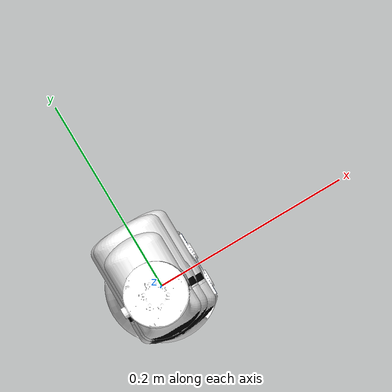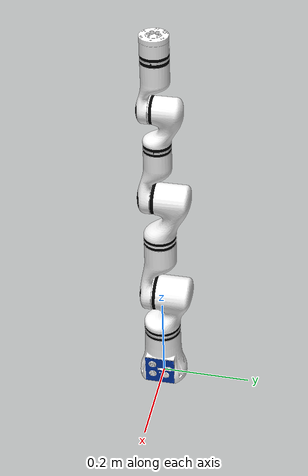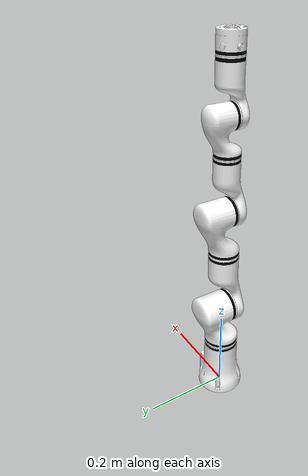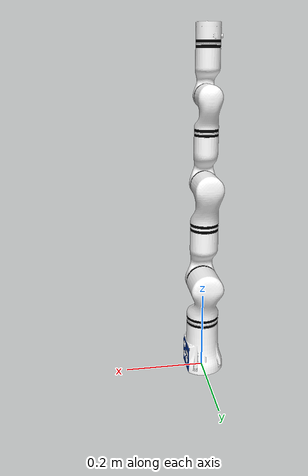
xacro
<?xml version='1.0' encoding='utf-8'?>
<robot name="rm_65_description">
  <link name="base_link">
    <inertial>
      <origin rpy="0 0 0" xyz="-0.00049987 -5.2709E-05 0.060019" />
      <mass value="1.862" />
      <inertia ixx="0.0017232" ixy="-3.1058E-06" ixz="3.7924E-05" iyy="0.0017051" iyz="-1.3691E-06" izz="0.00090158" />
    </inertial>
    <collision>
      <origin rpy="0 0 0" xyz="0 0 0" />
      <geometry>
        <mesh filename="package://rm_description/meshes/rm_65_arm/base_link.STL" />
      </geometry>
    </collision>
    <visual>
      <origin xyz="0 0 0" rpy="0 0 0" />
      <geometry>
        <mesh filename="package://rm_description/meshes/dae/base/base_v1.0.dae" />
      </geometry>
    </visual>
  </link>
  <link name="Link1">
    <inertial>
      <origin rpy="0 0 0" xyz="0.000941 0.007803 -0.10744" />
      <mass value="1.51" />
      <inertia ixx="0.002662223" ixy="-0.000026849" ixz="-0.000013775" iyy="0.002331685" iyz="-0.000078667" izz="0.001663712" />
    </inertial>
    <collision>
      <origin rpy="0 0 0" xyz="0 0 0" />
      <geometry>
        <mesh filename="package://rm_description/meshes/rm_65_arm/link1.STL" />
      </geometry>
    </collision>
    <visual>
      <origin xyz="0 0 0" rpy="0 0 0" />
      <geometry>
        <mesh filename="package://rm_description/meshes/dae/rm65/link_1.dae" />
      </geometry>
    </visual>
  </link>
  <joint name="joint1" type="revolute">
    <origin rpy="0 0 0" xyz="0 0 0.2405" />
    <parent link="base_link" />
    <child link="Link1" />
    <axis xyz="0 0 1" />
    <limit effort="60" lower="-3.106" upper="3.106" velocity="3.14" />
  </joint>
  <link name="Link2">
    <inertial>
      <origin rpy="0 0 0" xyz="0.183722 0.000103 -0.001665" />
      <mass value="1.653" />
      <inertia ixx="0.001706953" ixy="-0.000006995" ixz="0.001809254" iyy="0.014713776" iyz="0.000006223" izz="0.014239805" />
    </inertial>
    <collision>
      <origin rpy="0 0 0" xyz="0 0 0" />
      <geometry>
        <mesh filename="package://rm_description/meshes/rm_65_arm/link2.STL" />
      </geometry>
    </collision>
    <visual>
      <origin xyz="0 0 0" rpy="0 0 0" />
      <geometry>
        <mesh filename="package://rm_description/meshes/dae/rm65/link_2.dae" />
      </geometry>
    </visual>
  </link>
  <joint name="joint2" type="revolute">
    <origin rpy="1.5708 -1.5708 0" xyz="0 0 0" />
    <parent link="Link1" />
    <child link="Link2" />
    <axis xyz="0 0 1" />
    <limit effort="60" lower="-2.2689" upper="2.2689" velocity="3.14" />
  </joint>
  <link name="Link3">
    <inertial>
      <origin rpy="0 0 0" xyz="0.000029 -0.090105 0.004039" />
      <mass value="0.726" />
      <inertia ixx="0.001350874" ixy="0.000001069" ixz="-0.000000228" iyy="0.000360021" iyz="-0.000219904" izz="0.001331598" />
    </inertial>
    <collision>
      <origin rpy="0 0 0" xyz="0 0 0" />
      <geometry>
        <mesh filename="package://rm_description/meshes/rm_65_arm/link3.STL" />
      </geometry>
    </collision>
    <visual>
      <origin xyz="0 0 0" rpy="0 0 0" />
      <geometry>
        <mesh filename="package://rm_description/meshes/dae/rm65/link_3.dae" />
      </geometry>
    </visual>
  </link>
  <joint name="joint3" type="revolute">
    <origin rpy="0 0 1.5708" xyz="0.256 0 0" />
    <parent link="Link2" />
    <child link="Link3" />
    <axis xyz="0 0 1" />
    <limit effort="30" lower="-2.356" upper="2.356" velocity="3.14" />
  </joint>
  <link name="Link4">
    <inertial>
      <origin rpy="0 0 0" xyz="0.000007 -0.009486 -0.008041" />
      <mass value="0.671" />
      <inertia ixx="0.000690221" ixy="-0.000000865" ixz="-0.000000692" iyy="0.000552834" iyz="0.000016411" izz="0.000425835" />
    </inertial>
    <collision>
      <origin rpy="0 0 0" xyz="0 0 0" />
      <geometry>
        <mesh filename="package://rm_description/meshes/rm_65_arm/link4.STL" />
      </geometry>
    </collision>
    <visual>
      <origin xyz="0 0 0" rpy="0 0 0" />
      <geometry>
        <mesh filename="package://rm_description/meshes/dae/rm65/link_4.dae" />
      </geometry>
    </visual>
  </link>
  <joint name="joint4" type="revolute">
    <origin rpy="1.5708 0 0" xyz="0 -0.21 0" />
    <parent link="Link3" />
    <child link="Link4" />
    <axis xyz="0 0 1" />
    <limit effort="10" lower="-3.106" upper="3.106" velocity="3.14" />
  </joint>
  <link name="Link5">
    <inertial>
      <origin rpy="0 0 0" xyz="0.000032 -0.083769 0.002326" />
      <mass value="0.647" />
      <inertia ixx="0.000834052" ixy="0.000000952" ixz="-0.000000257" iyy="0.000281767" iyz="-0.000111750" izz="0.000821714" />
    </inertial>
    <collision>
      <origin rpy="0 0 0" xyz="0 0 0" />
      <geometry>
        <mesh filename="package://rm_description/meshes/rm_65_arm/link5.STL" />
      </geometry>
    </collision>
    <visual>
      <origin xyz="0 0 0" rpy="0 0 0" />
      <geometry>
        <mesh filename="package://rm_description/meshes/dae/rm65/link_5.dae" />
      </geometry>
    </visual>
  </link>
  <joint name="joint5" type="revolute">
    <origin rpy="-1.5708 0 0" xyz="0 0 0" />
    <parent link="Link4" />
    <child link="Link5" />
    <axis xyz="0 0 1" />
    <limit effort="10" lower="-2.234" upper="2.234" velocity="3.14" />
  </joint>
  <link name="Link6">
    <inertial>
      <origin rpy="0 0 0" xyz="-0.000569 0.00029 -0.010569" />
      <mass value="0.14434" />
      <inertia ixx="3.043E-05" ixy="2.622E-09" ixz="2.199E-08" iyy="3.604E-05" iyz="1.195E-08" izz="5.52E-05" />
    </inertial>
    <collision>
      <origin rpy="0 0 0" xyz="0 0 0" />
      <geometry>
        <mesh filename="package://rm_description/meshes/rm_65_arm/link6_6fb.STL" />
      </geometry>
    </collision>
    <visual>
      <origin xyz="0 0 0" rpy="0 0 0" />
      <geometry>
        <mesh filename="package://rm_description/meshes/dae/rm65/link_6_fb.dae" />
      </geometry>
    </visual>
  </link>
  <joint name="joint6" type="revolute">
    <origin rpy="1.5708 0 0" xyz="0 -0.161 0" />
    <parent link="Link5" />
    <child link="Link6" />
    <axis xyz="0 0 1" />
    <limit effort="10" lower="-6.28" upper="6.28" velocity="3.14" />
  </joint>
</robot>
